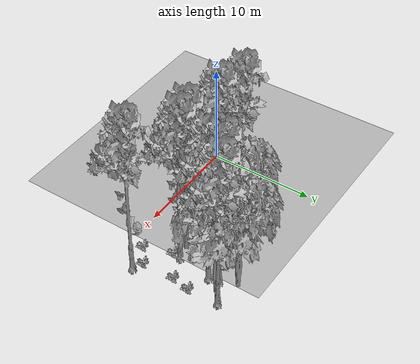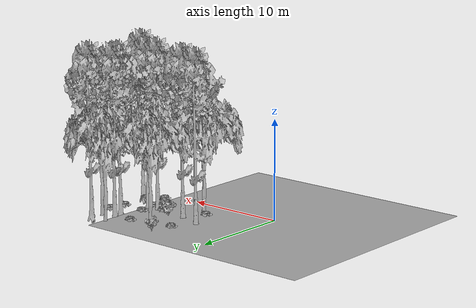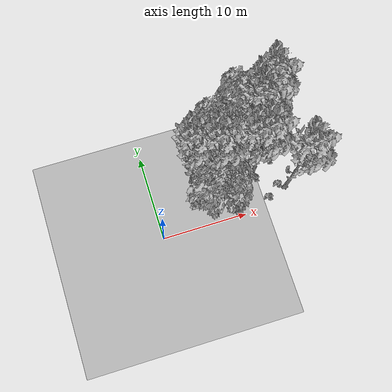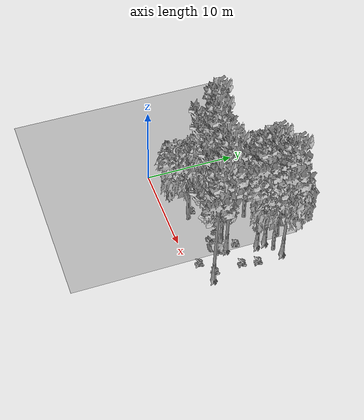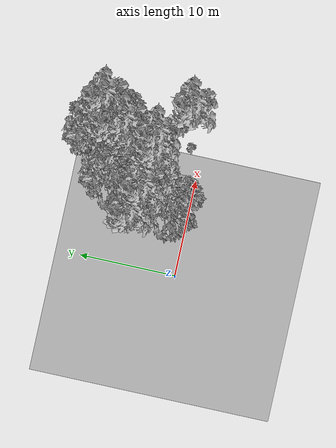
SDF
<sdf version="1.7">
 <world name="default">
  <model name="ground_plane">
   <static>1</static>
   <link name="link">
    <collision name="collision">
     <pose>-50 0 0 0 -0 0</pose>
     <geometry><plane><normal>0 0 1</normal><size>80 80</size></plane></geometry>
     <surface><contact><ode><min_depth>0.01</min_depth><max_vel>0</max_vel></ode></contact></surface>
    </collision>
    <visual name="grass">
     <cast_shadows>0</cast_shadows>
     <geometry>
      <mesh>
       <scale>0.46714285714285714 0.46714285714285714 0.1</scale>
       <uri>file://grass_plane/meshes/grass_plane.dae</uri>
      </mesh>
     </geometry>
    </visual>
   </link>
  </model>
  <model name="Tree 17">
   <static>1</static>
   <pose>7.408756855892989 4.94468895992226 0 1.57079 -0 0</pose>
   <link name="link">
    <collision name="collision">
     <geometry><mesh><scale>3.5 5 3.5</scale><uri>model://tree_9/meshes/tree_9.obj</uri></mesh></geometry>
    </collision>
    <visual name="visual">
     <geometry><mesh><scale>3.5 5 3.5</scale><uri>model://tree_9/meshes/tree_9.obj</uri></mesh></geometry>
    </visual>
   </link>
  </model>
  <model name="Tree 58">
   <static>1</static>
   <pose>15.613124075627795 1.9230962227519726 0 1.57079 -0 0</pose>
   <link name="link">
    <collision name="collision">
     <geometry><mesh><scale>3.5 5 3.5</scale><uri>model://tree_9/meshes/tree_9.obj</uri></mesh></geometry>
    </collision>
    <visual name="visual">
     <geometry><mesh><scale>3.5 5 3.5</scale><uri>model://tree_9/meshes/tree_9.obj</uri></mesh></geometry>
    </visual>
   </link>
  </model>
  <model name="Tree 121">
   <static>1</static>
   <pose>13.900761530395236 9.31741960463279 0 1.57079 -0 0</pose>
   <link name="link">
    <collision name="collision">
     <geometry><mesh><scale>3.5 5 3.5</scale><uri>model://tree_2/meshes/tree_2.obj</uri></mesh></geometry>
    </collision>
    <visual name="visual">
     <geometry><mesh><scale>3.5 5 3.5</scale><uri>model://tree_2/meshes/tree_2.obj</uri></mesh></geometry>
    </visual>
   </link>
  </model>
  <model name="Tree 128">
   <static>1</static>
   <pose>12.927099358338133 7.873019869562363 0 1.57079 -0 0</pose>
   <link name="link">
    <collision name="collision">
     <geometry><mesh><scale>3.5 5 3.5</scale><uri>model://tree_9/meshes/tree_9.obj</uri></mesh></geometry>
    </collision>
    <visual name="visual">
     <geometry><mesh><scale>3.5 5 3.5</scale><uri>model://tree_9/meshes/tree_9.obj</uri></mesh></geometry>
    </visual>
   </link>
  </model>
  <model name="Tree 162">
   <static>1</static>
   <pose>7.0397688379693975 2.2110743802616213 0 1.57079 -0 0</pose>
   <link name="link">
    <collision name="collision">
     <geometry><mesh><scale>3.5 5 3.5</scale><uri>model://tree_2/meshes/tree_2.obj</uri></mesh></geometry>
    </collision>
    <visual name="visual">
     <geometry><mesh><scale>3.5 5 3.5</scale><uri>model://tree_2/meshes/tree_2.obj</uri></mesh></geometry>
    </visual>
   </link>
  </model>
  <model name="Tree 294">
   <static>1</static>
   <pose>14.765030494086332 10.013012426680142 0 1.57079 -0 0</pose>
   <link name="link">
    <collision name="collision">
     <geometry><mesh><scale>3.5 5 3.5</scale><uri>model://tree_9/meshes/tree_9.obj</uri></mesh></geometry>
    </collision>
    <visual name="visual">
     <geometry><mesh><scale>3.5 5 3.5</scale><uri>model://tree_9/meshes/tree_9.obj</uri></mesh></geometry>
    </visual>
   </link>
  </model>
  <model name="Tree 308">
   <static>1</static>
   <pose>11.218654663498342 4.446608365630425 0 1.57079 -0 0</pose>
   <link name="link">
    <collision name="collision">
     <geometry><mesh><scale>3.5 5 3.5</scale><uri>model://tree_9/meshes/tree_9.obj</uri></mesh></geometry>
    </collision>
    <visual name="visual">
     <geometry><mesh><scale>3.5 5 3.5</scale><uri>model://tree_9/meshes/tree_9.obj</uri></mesh></geometry>
    </visual>
   </link>
  </model>
  <model name="Tree 349">
   <static>1</static>
   <pose>12.30653885798121 10.444721845534886 0 1.57079 -0 0</pose>
   <link name="link">
    <collision name="collision">
     <geometry><mesh><scale>3.5 5 3.5</scale><uri>model://tree_2/meshes/tree_2.obj</uri></mesh></geometry>
    </collision>
    <visual name="visual">
     <geometry><mesh><scale>3.5 5 3.5</scale><uri>model://tree_2/meshes/tree_2.obj</uri></mesh></geometry>
    </visual>
   </link>
  </model>
  <model name="Tree 361">
   <static>1</static>
   <pose>12.379173646923753 4.58291813983989 0 1.57079 -0 0</pose>
   <link name="link">
    <collision name="collision">
     <geometry><mesh><scale>3.5 5 3.5</scale><uri>model://tree_9/meshes/tree_9.obj</uri></mesh></geometry>
    </collision>
    <visual name="visual">
     <geometry><mesh><scale>3.5 5 3.5</scale><uri>model://tree_9/meshes/tree_9.obj</uri></mesh></geometry>
    </visual>
   </link>
  </model>
  <model name="Tree 514">
   <static>1</static>
   <pose>12.776990299470363 8.830098003764533 0 1.57079 -0 0</pose>
   <link name="link">
    <collision name="collision">
     <geometry><mesh><scale>3.5 5 3.5</scale><uri>model://tree_9/meshes/tree_9.obj</uri></mesh></geometry>
    </collision>
    <visual name="visual">
     <geometry><mesh><scale>3.5 5 3.5</scale><uri>model://tree_9/meshes/tree_9.obj</uri></mesh></geometry>
    </visual>
   </link>
  </model>
  <model name="Tree 546">
   <static>1</static>
   <pose>5.081426168648385 5.657867171120145 0 1.57079 -0 0</pose>
   <link name="link">
    <collision name="collision">
     <geometry><mesh><scale>3.5 5 3.5</scale><uri>model://tree_9/meshes/tree_9.obj</uri></mesh></geometry>
    </collision>
    <visual name="visual">
     <geometry><mesh><scale>3.5 5 3.5</scale><uri>model://tree_9/meshes/tree_9.obj</uri></mesh></geometry>
    </visual>
   </link>
  </model>
  <model name="Tree 628">
   <static>1</static>
   <pose>8.664425344078943 8.068601677200242 0 1.57079 -0 0</pose>
   <link name="link">
    <collision name="collision">
     <geometry><mesh><scale>3.5 5 3.5</scale><uri>model://tree_2/meshes/tree_2.obj</uri></mesh></geometry>
    </collision>
    <visual name="visual">
     <geometry><mesh><scale>3.5 5 3.5</scale><uri>model://tree_2/meshes/tree_2.obj</uri></mesh></geometry>
    </visual>
   </link>
  </model>
  <model name="Bush 137">
   <static>1</static>
   <pose>9.01724405927176 5.291052409588993 0 1.57079 -0 0</pose>
   <link name="link">
    <collision name="collision">
     <geometry><mesh><scale>2 2 2</scale><uri>model://bush_1/meshes/bush_1.obj</uri></mesh></geometry>
     <surface><contact><collide_without_contact>false</collide_without_contact></contact></surface>
    </collision>
    <visual name="visual">
     <geometry><mesh><scale>2 2 2</scale><uri>model://bush_1/meshes/bush_1.obj</uri></mesh></geometry>
    </visual>
   </link>
  </model>
  <model name="Bush 152">
   <static>1</static>
   <pose>6.695087936186539 10.061467354183748 0 1.57079 -0 0</pose>
   <link name="link">
    <collision name="collision">
     <geometry><mesh><scale>2 2 2</scale><uri>model://bush_0/meshes/bush_0.obj</uri></mesh></geometry>
     <surface><contact><collide_without_contact>false</collide_without_contact></contact></surface>
    </collision>
    <visual name="visual">
     <geometry><mesh><scale>2 2 2</scale><uri>model://bush_0/meshes/bush_0.obj</uri></mesh></geometry>
    </visual>
   </link>
  </model>
  <model name="Bush 194">
   <static>1</static>
   <pose>6.223226722543345 2.8571217612001405 0 1.57079 -0 0</pose>
   <link name="link">
    <collision name="collision">
     <geometry><mesh><scale>2 2 2</scale><uri>model://bush_2/meshes/bush_2.obj</uri></mesh></geometry>
     <surface><contact><collide_without_contact>false</collide_without_contact></contact></surface>
    </collision>
    <visual name="visual">
     <geometry><mesh><scale>2 2 2</scale><uri>model://bush_2/meshes/bush_2.obj</uri></mesh></geometry>
    </visual>
   </link>
  </model>
  <model name="Bush 244">
   <static>1</static>
   <pose>13.242606526822378 1.1832771780406262 0 1.57079 -0 0</pose>
   <link name="link">
    <collision name="collision">
     <geometry><mesh><scale>2 2 2</scale><uri>model://bush_2/meshes/bush_2.obj</uri></mesh></geometry>
     <surface><contact><collide_without_contact>false</collide_without_contact></contact></surface>
    </collision>
    <visual name="visual">
     <geometry><mesh><scale>2 2 2</scale><uri>model://bush_2/meshes/bush_2.obj</uri></mesh></geometry>
    </visual>
   </link>
  </model>
  <model name="Bush 404">
   <static>1</static>
   <pose>12.04723344799686 5.76754102711115 0 1.57079 -0 0</pose>
   <link name="link">
    <collision name="collision">
     <geometry><mesh><scale>2 2 2</scale><uri>model://bush_2/meshes/bush_2.obj</uri></mesh></geometry>
     <surface><contact><collide_without_contact>false</collide_without_contact></contact></surface>
    </collision>
    <visual name="visual">
     <geometry><mesh><scale>2 2 2</scale><uri>model://bush_2/meshes/bush_2.obj</uri></mesh></geometry>
    </visual>
   </link>
  </model>
  <model name="Bush 482">
   <static>1</static>
   <pose>14.661213154611254 5.444877111339714 0 1.57079 -0 0</pose>
   <link name="link">
    <collision name="collision">
     <geometry><mesh><scale>2 2 2</scale><uri>model://bush_2/meshes/bush_2.obj</uri></mesh></geometry>
     <surface><contact><collide_without_contact>false</collide_without_contact></contact></surface>
    </collision>
    <visual name="visual">
     <geometry><mesh><scale>2 2 2</scale><uri>model://bush_2/meshes/bush_2.obj</uri></mesh></geometry>
    </visual>
   </link>
  </model>
  <model name="Bush 494">
   <static>1</static>
   <pose>10.654899507982279 8.811810573225678 0 1.57079 -0 0</pose>
   <link name="link">
    <collision name="collision">
     <geometry><mesh><scale>2 2 2</scale><uri>model://bush_2/meshes/bush_2.obj</uri></mesh></geometry>
     <surface><contact><collide_without_contact>false</collide_without_contact></contact></surface>
    </collision>
    <visual name="visual">
     <geometry><mesh><scale>2 2 2</scale><uri>model://bush_2/meshes/bush_2.obj</uri></mesh></geometry>
    </visual>
   </link>
  </model>
  <model name="Bush 495">
   <static>1</static>
   <pose>12.421693043550277 3.8422226548057097 0 1.57079 -0 0</pose>
   <link name="link">
    <collision name="collision">
     <geometry><mesh><scale>2 2 2</scale><uri>model://bush_2/meshes/bush_2.obj</uri></mesh></geometry>
     <surface><contact><collide_without_contact>false</collide_without_contact></contact></surface>
    </collision>
    <visual name="visual">
     <geometry><mesh><scale>2 2 2</scale><uri>model://bush_2/meshes/bush_2.obj</uri></mesh></geometry>
    </visual>
   </link>
  </model>
  <model name="Bush 558">
   <static>1</static>
   <pose>6.12473423789848 7.908540469409516 0 1.57079 -0 0</pose>
   <link name="link">
    <collision name="collision">
     <geometry><mesh><scale>2 2 2</scale><uri>model://bush_2/meshes/bush_2.obj</uri></mesh></geometry>
     <surface><contact><collide_without_contact>false</collide_without_contact></contact></surface>
    </collision>
    <visual name="visual">
     <geometry><mesh><scale>2 2 2</scale><uri>model://bush_2/meshes/bush_2.obj</uri></mesh></geometry>
    </visual>
   </link>
  </model>
  <model name="Bush 610">
   <static>1</static>
   <pose>14.971391889200582 7.142447643340681 0 1.57079 -0 0</pose>
   <link name="link">
    <collision name="collision">
     <geometry><mesh><scale>2 2 2</scale><uri>model://bush_2/meshes/bush_2.obj</uri></mesh></geometry>
     <surface><contact><collide_without_contact>false</collide_without_contact></contact></surface>
    </collision>
    <visual name="visual">
     <geometry><mesh><scale>2 2 2</scale><uri>model://bush_2/meshes/bush_2.obj</uri></mesh></geometry>
    </visual>
   </link>
  </model>
  <model name="Bush 636">
   <static>1</static>
   <pose>14.769755451738824 2.3815426027332194 0 1.57079 -0 0</pose>
   <link name="link">
    <collision name="collision">
     <geometry><mesh><scale>2 2 2</scale><uri>model://bush_2/meshes/bush_2.obj</uri></mesh></geometry>
     <surface><contact><collide_without_contact>false</collide_without_contact></contact></surface>
    </collision>
    <visual name="visual">
     <geometry><mesh><scale>2 2 2</scale><uri>model://bush_2/meshes/bush_2.obj</uri></mesh></geometry>
    </visual>
   </link>
  </model>
 </world>
</sdf>
